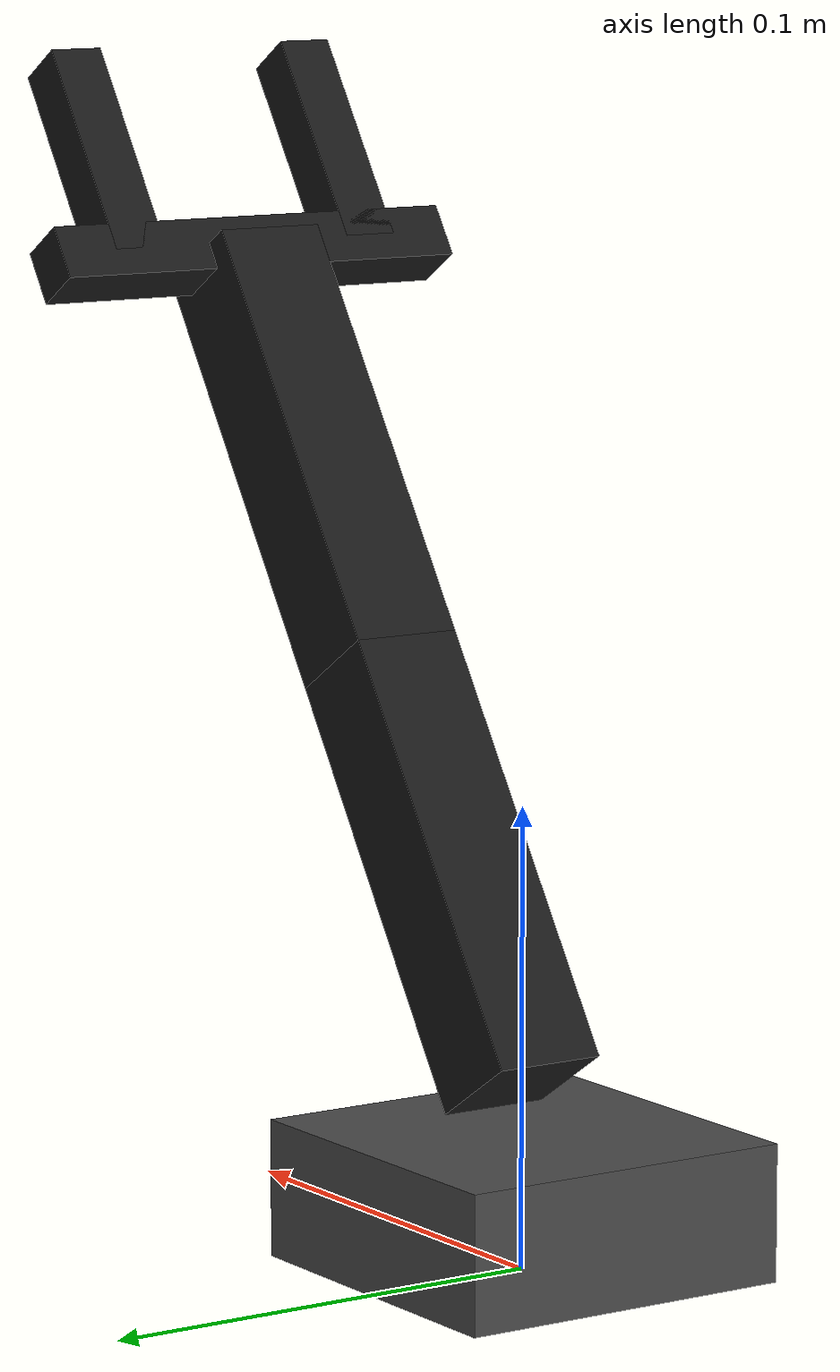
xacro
<?xml version="1.0"?>
<robot name="$(arg robot_name)" xmlns:xacro="http://www.ros.org/wiki/xacro">

  <!-- Constants for robot dimensions -->
  <xacro:property name="PI" value="3.1415926535897931"/>
  <xacro:property name="mass" value="1" /> <!-- arbitrary value for mass -->
  <xacro:property name="base_width" value="0.077" /> <!-- Square dimensions (widthxwidth) of base -->
  <xacro:property name="base_height" value="0.03" /> <!-- Base height -->
  <xacro:property name="conn_to_axle" value="0.0335" /> <!-- Length from attach point to axle -->
  <xacro:property name="servo_height" value="0.045" /> <!-- Height of servo -->
  <xacro:property name="servo_to_axle" value="0.0385" /> <!-- Length from base of servo to axle -->
  <xacro:property name="servotop_to_axle" value="${servo_height - servo_to_axle}" />
  <xacro:property name="smallcon" value="0.0065" /> <!-- Extra spacing due to small connector -->
  <xacro:property name="thick" value="0.025" />
  <xacro:property name="l1" value="0.1" />

  <xacro:macro name="box_inertial" params="x y z mass *origin">
    <inertial>
      <mass value="${mass}" />
      <xacro:insert_block name="origin" />
      <inertia ixx="${0.0833333 * mass * (y*y + z*z)}" ixy="0.0" ixz="0.0"
        iyy="${0.0833333 * mass * (x*x + z*z)}" iyz="0.0"
        izz="${0.0833333 * mass * (x*x + y*y)}" />
    </inertial>
  </xacro:macro>

  <!-- ros_control plugin -->
  <gazebo>
    <plugin name="gazebo_ros_control" filename="libgazebo_ros_control.so">
      <robotSimType>gazebo_ros_control/DefaultRobotHWSim</robotSimType>
      <legacyModeNS>true</legacyModeNS>
    </plugin>
  </gazebo>

  <gazebo reference="base_link">
    <material>Gazebo/Black</material>
  </gazebo>

  <!-- Import Rviz colors -->
  <xacro:include filename="$(find inserter_detector)/simulation/inserter/materials.xacro" />

  <!-- Used for fixing robot to Gazebo 'base_link' -->
  <link name="world"/>

  <joint name="fixed" type="fixed">
    <parent link="world"/>
    <child link="base_link"/>
  </joint>

  <!-- Base Link -->
  <link name="base_link">
    <visual>
      <origin xyz="0 0 ${base_height/2}" rpy="0 0 0"/>
      <geometry>
        <box size="${base_width} ${base_width} ${base_height}"/>
      </geometry>
      <material name="grey"/>
    </visual>
    <xacro:box_inertial mass="1.0" x="${base_width}" y="${base_width}" z="${base_height}">
      <origin xyz="0 0 ${base_height/2}" />
    </xacro:box_inertial>
  </link>

  <joint name="joint1" type="revolute">
    <limit effort="1000.0" lower="${-PI}" upper="${PI}" velocity="5"/>
    <origin rpy="0 0 0" xyz="0 0 0"/> <!-- ${base_height + 0.01} -->
    <parent link="base_link"/>
    <child link="link1"/>
    <axis xyz="0 0 1"/>
    <dynamics damping="0.4"/>
  </joint>

  <link name="link1">
    <xacro:box_inertial mass="10" x="0.5" y="0.5" z="0.5">
      <origin xyz="0 0 0" />
    </xacro:box_inertial>
  </link>

  <joint name="joint2" type="revolute">
    <limit effort="1000.0" lower="0.05" upper="1.1" velocity="5"/>
    <origin rpy="0 0 0" xyz="0 0 ${base_height + 0.01}"/>
    <parent link="link1"/>
    <child link="link2"/>
    <axis xyz="0 1 0"/>
    <dynamics damping="0.4"/>
  </joint>

  <link name="link2">
    <visual>
      <origin xyz="0 0 ${l1/2}" rpy="0 0 0"/>
      <geometry>
        <box size="${thick} ${thick} ${l1}"/>
      </geometry>
      <material name="dgrey"/>
    </visual>
    <xacro:box_inertial mass="0.1" x="${thick}" y="${thick}" z="${l1}">
      <origin xyz="0 0 ${l1/2}" />
    </xacro:box_inertial>
  </link>

  <joint name="joint3" type="revolute">
    <limit effort="1000.0" lower="0" upper="${PI}" velocity="5"/>
    <origin rpy="0 0 0" xyz="0 0 ${l1}"/>
    <parent link="link2"/>
    <child link="link3"/>
    <axis xyz="0 1 0"/>
    <dynamics damping="0.2"/>
  </joint>

  <link name="link3">
    <visual>
      <origin xyz="0 0 ${l1/2}" rpy="0 0 0"/>
      <geometry>
        <box size="${thick} ${thick} ${l1}"/>
      </geometry>
      <material name="dgrey"/>
    </visual>
    <xacro:box_inertial mass="0.1" x="${thick}" y="${thick}" z="${l1}">
      <origin xyz="0 0 ${l1/2}" />
    </xacro:box_inertial>
  </link>

  <joint name="joint4" type="fixed">
    <origin rpy="0 ${PI/2} 0" xyz="0 0 ${l1}"/>
    <parent link="link3"/>
    <child link="link4"/>
    <axis xyz="0 1 0"/>
  </joint>

  <link name="link4">
    <visual>
      <origin xyz="0 0 0" rpy="0 0 0"/>
      <geometry>
        <box size="${thick/2} ${l1} ${thick/2}"/>
      </geometry>
      <material name="dgrey"/>
    </visual>
    <xacro:box_inertial mass="0.1" x="${thick/2}" y="${l1}" z="${thick/2}">
      <origin xyz="0 0 0" />
    </xacro:box_inertial>
  </link>

  <joint name="joint5" type="prismatic">
    <limit effort="1000.0" lower="0.01" upper="0.05" velocity="5"/>
    <origin rpy="0 0 0" xyz="0 0 0"/>
    <parent link="link4"/>
    <child link="link5"/>
    <axis xyz="0 1 0"/>
    <dynamics damping="0.2"/>
  </joint>

  <link name="link5">
    <visual>
      <origin xyz="${-l1/4} 0 0" rpy="0 0 0"/>
      <geometry>
        <box size="${l1/2} ${thick/2} ${thick/2}"/>
      </geometry>
      <material name="dgrey"/>
    </visual>
    <xacro:box_inertial mass="0.1" x="${l1/2}" y="${thick/2}" z="${thick/2}">
      <origin xyz="${-l1/4} 0 0" />
    </xacro:box_inertial>
    <collision>
      <origin xyz="${-l1/4} 0 0" rpy="0 0 0"/>
      <geometry>
        <box size="${l1/2} ${thick/2} ${thick/2}"/>
      </geometry>
    </collision>
  </link>

  <joint name="joint6" type="prismatic">
    <limit effort="1000.0" lower="0.01" upper="0.05" velocity="5"/>
    <origin rpy="0 0 0" xyz="0 0 0"/>
    <parent link="link4"/>
    <child link="link6"/>
    <axis xyz="0 -1 0"/>
    <dynamics damping="0.2"/>
  </joint>

  <link name="link6">
    <visual>
      <origin xyz="${-l1/4} 0 0" rpy="0 0 0"/>
      <geometry>
        <box size="${l1/2} ${thick/2} ${thick/2}"/>
      </geometry>
      <material name="dgrey"/>
    </visual>
    <xacro:box_inertial mass="0.1" x="${l1/2}" y="${thick/2}" z="${thick/2}">
      <origin xyz="${-l1/4} 0 0" />
    </xacro:box_inertial>
    <collision>
      <origin xyz="${-l1/4} 0 0" rpy="0 0 0"/>
      <geometry>
        <box size="${l1/2} ${thick/2} ${thick/2}"/>
      </geometry>
      <surface>
        <friction>
          <!-- rubber on rubber, https://www.engineeringtoolbox.com/friction-coefficients-d_778.html -->
          <ode>
            <mu>1.16</mu>
            <mu2>1.16</mu2>
          </ode>
        </friction>
      </surface>
    </collision>
  </link>

  <transmission name="tran1">
    <type>transmission_interface/SimpleTransmission</type>
    <actuator name="motor1">
      <mechanicalReduction>1</mechanicalReduction>
    </actuator>
    <joint name="joint1">
      <hardwareInterface>hardware_interface/EffortJointInterface</hardwareInterface>
    </joint>
  </transmission>
  <transmission name="tran2">
    <type>transmission_interface/SimpleTransmission</type>
    <actuator name="motor2">
      <mechanicalReduction>1</mechanicalReduction>
    </actuator>
    <joint name="joint2">
      <hardwareInterface>hardware_interface/EffortJointInterface</hardwareInterface>
    </joint>
  </transmission>
  <transmission name="tran3">
    <type>transmission_interface/SimpleTransmission</type>
    <actuator name="motor3">
      <mechanicalReduction>1</mechanicalReduction>
    </actuator>
    <joint name="joint3">
      <hardwareInterface>hardware_interface/EffortJointInterface</hardwareInterface>
    </joint>
  </transmission>
  <transmission name="tran5">
    <type>transmission_interface/SimpleTransmission</type>
    <actuator name="motor5">
      <mechanicalReduction>1</mechanicalReduction>
    </actuator>
    <joint name="joint5">
      <hardwareInterface>hardware_interface/EffortJointInterface</hardwareInterface>
    </joint>
  </transmission>
  <transmission name="tran6">
    <type>transmission_interface/SimpleTransmission</type>
    <actuator name="motor6">
      <mechanicalReduction>1</mechanicalReduction>
    </actuator>
    <joint name="joint6">
      <hardwareInterface>hardware_interface/EffortJointInterface</hardwareInterface>
    </joint>
  </transmission>
</robot>

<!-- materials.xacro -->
<robot>

  <material name="black">
    <color rgba="0.0 0.0 0.0 1.0"/>
  </material>

  <material name="blue">
    <color rgba="0.0 0.0 0.8 1.0"/>
  </material>

  <material name="green">
    <color rgba="0.0 0.8 0.0 1.0"/>
  </material>

  <material name="grey">
    <color rgba="0.3 0.3 0.3 1.0"/>
  </material>

  <material name="dgrey">
    <color rgba="0.1 0.1 0.1 1.0"/>
  </material>

  <material name="orange">
    <color rgba="${255/255} ${108/255} ${10/255} 1.0"/>
  </material>

  <material name="brown">
    <color rgba="${222/255} ${207/255} ${195/255} 1.0"/>
  </material>

  <material name="red">
    <color rgba="0.8 0.0 0.0 1.0"/>
  </material>

  <material name="white">
    <color rgba="1.0 1.0 1.0 1.0"/>
  </material>

</robot>
